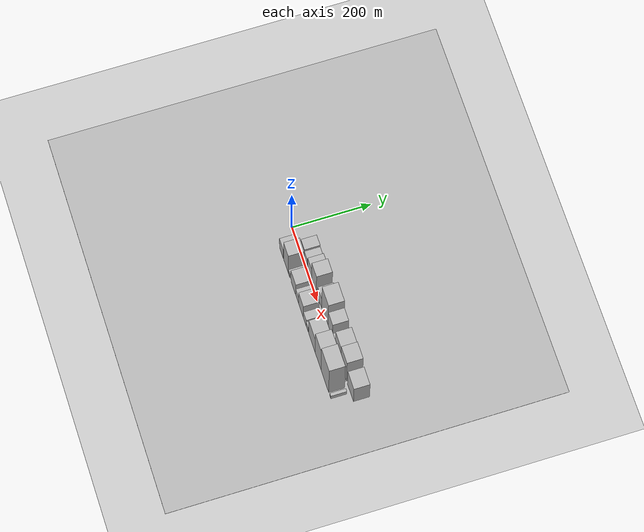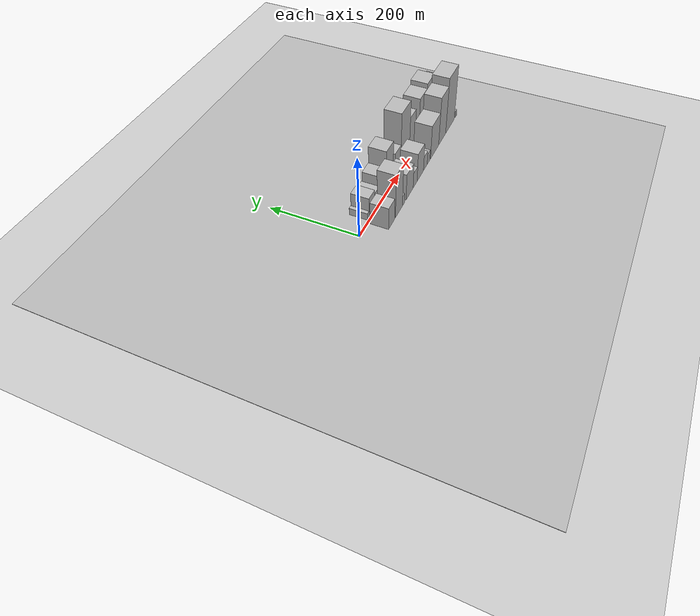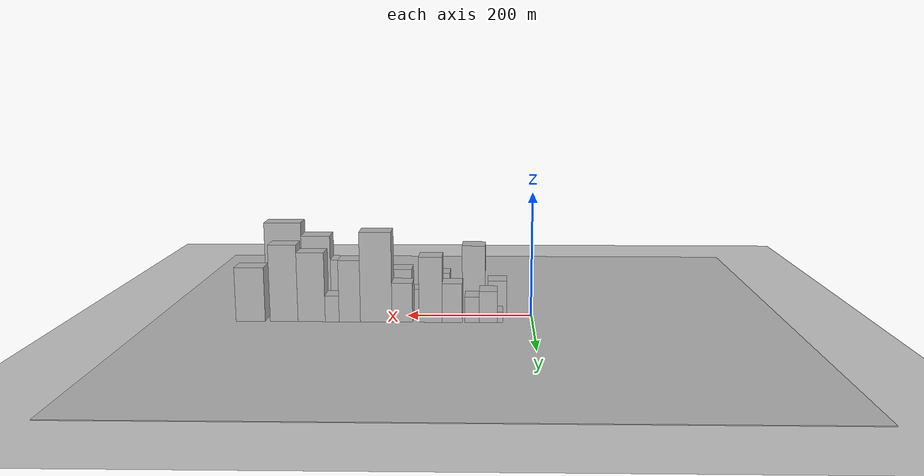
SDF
<?xml version="1.0" encoding="utf-8"?>

<sdf version="1.6">

   <world name="default">

      <gui fullscreen="0">

         <camera name="user_camera">

            <pose>-15 0 4.57585 0 0 0</pose>

            <view_controller>orbit</view_controller>

         </camera>

      </gui>

      <scene>

         <sky>

           <clouds>

             <speed>12</speed>

           </clouds>

         </sky>

         <ambient>0.4 0.4 0.4 1</ambient>

         <background>0.7 0.7 0.7 1</background>

         <shadows>1</shadows>

      </scene>

      <gravity>0 0 -9.8066</gravity>

      <magnetic_field>6e-06 2.3e-05 -4.2e-05</magnetic_field>

      <physics default="0" name="default_physics" type="ode">

         <ode>

            <solver>

               <type>quick</type>

               <iters>10</iters>

               <sor>1.0</sor>

               <use_dynamic_moi_rescaling>0</use_dynamic_moi_rescaling>

            </solver>

            <constraints>

               <cfm>0</cfm>

               <erp>0.2</erp>

               <contact_max_correcting_vel>100</contact_max_correcting_vel>

               <contact_surface_layer>0.001</contact_surface_layer>

            </constraints>

         </ode>

         <max_step_size>0.004</max_step_size>

         <real_time_factor>1</real_time_factor>

         <real_time_update_rate>250</real_time_update_rate>

      </physics>

      <light name="sun" type="directional">

         <cast_shadows>1</cast_shadows>

         <pose>0 0 10 0 0 0</pose>

         <diffuse>0.8 0.8 0.8 1</diffuse>

         <specular>0.2 0.2 0.2 1</specular>

         <attenuation>

            <range>1000</range>

            <constant>0.9</constant>

            <linear>0.01</linear>

            <quadratic>0.001</quadratic>

         </attenuation>

         <direction>-0.5 0.1 -0.9</direction>

      </light>

      <include>

         <name>ground_plane_1</name>

         <uri>model://HANNAS_ground_plane</uri>

         <pose>0 0 0  0 0 0</pose>

      </include>

      <include>

         <name>ground_plane_2</name>

         <uri>model://HANNAS_ground_plane</uri>

         <pose>100 0 0  0 0 0</pose>

      </include>

      <model name="building_1">

         <static>1</static>

         <pose frame="">51.3015 24.5000 0 0.000000 0.000000 1.570796</pose>

         <link name="link">

            <pose frame="">0 0 9.00 0 0 0</pose>

            <collision name="collision">

               <geometry>

                  <box>

                     <size>40.0000 8.6030 18.0000</size>

                  </box>

               </geometry>

               <max_contacts>10</max_contacts>

               <surface>

                  <contact>

                     <ode/>

                  </contact>

                  <bounce/>

                  <friction>

                     <torsional>

                        <ode/>

                     </torsional>

                     <ode/>

                  </friction>

               </surface>

            </collision>

            <visual name="visual">

               <cast_shadows>0</cast_shadows>

               <geometry>

                  <box>

                     <size>40.0000 8.6030 18.0000</size>

                  </box>

               </geometry>

               <material>

                  <script>

                     <uri>model://HANNAS_wall/materials/scripts</uri>

                     <uri>model://HANNAS_wall/materials/textures</uri>

                     <name>vrc/HANNAS_wall</name>

                  </script>

               </material>

            </visual>

            <self_collide>0</self_collide>

            <enable_wind>0</enable_wind>

            <kinematic>0</kinematic>

         </link>

      </model>

      <model name="building_2">

         <static>1</static>

         <pose frame="">69.7901 24.5000 0 0.000000 0.000000 1.570796</pose>

         <link name="link">

            <pose frame="">0 0 25.50 0 0 0</pose>

            <collision name="collision">

               <geometry>

                  <box>

                     <size>40.0000 28.3742 51.0000</size>

                  </box>

               </geometry>

               <max_contacts>10</max_contacts>

               <surface>

                  <contact>

                     <ode/>

                  </contact>

                  <bounce/>

                  <friction>

                     <torsional>

                        <ode/>

                     </torsional>

                     <ode/>

                  </friction>

               </surface>

            </collision>

            <visual name="visual">

               <cast_shadows>0</cast_shadows>

               <geometry>

                  <box>

                     <size>40.0000 28.3742 51.0000</size>

                  </box>

               </geometry>

               <material>

                  <script>

                     <uri>model://HANNAS_wall/materials/scripts</uri>

                     <uri>model://HANNAS_wall/materials/textures</uri>

                     <name>vrc/HANNAS_wall</name>

                  </script>

               </material>

            </visual>

            <self_collide>0</self_collide>

            <enable_wind>0</enable_wind>

            <kinematic>0</kinematic>

         </link>

      </model>

      <model name="building_3">

         <static>1</static>

         <pose frame="">95.3571 24.5000 0 0.000000 0.000000 1.570796</pose>

         <link name="link">

            <pose frame="">0 0 21.00 0 0 0</pose>

            <collision name="collision">

               <geometry>

                  <box>

                     <size>40.0000 22.7597 42.0000</size>

                  </box>

               </geometry>

               <max_contacts>10</max_contacts>

               <surface>

                  <contact>

                     <ode/>

                  </contact>

                  <bounce/>

                  <friction>

                     <torsional>

                        <ode/>

                     </torsional>

                     <ode/>

                  </friction>

               </surface>

            </collision>

            <visual name="visual">

               <cast_shadows>0</cast_shadows>

               <geometry>

                  <box>

                     <size>40.0000 22.7597 42.0000</size>

                  </box>

               </geometry>

               <material>

                  <script>

                     <uri>model://HANNAS_wall/materials/scripts</uri>

                     <uri>model://HANNAS_wall/materials/textures</uri>

                     <name>vrc/HANNAS_wall</name>

                  </script>

               </material>

            </visual>

            <self_collide>0</self_collide>

            <enable_wind>0</enable_wind>

            <kinematic>0</kinematic>

         </link>

      </model>

      <model name="building_4">

         <static>1</static>

         <pose frame="">126.5291 24.5000 0 0.000000 0.000000 1.570796</pose>

         <link name="link">

            <pose frame="">0 0 31.50 0 0 0</pose>

            <collision name="collision">

               <geometry>

                  <box>

                     <size>40.0000 31.5842 63.0000</size>

                  </box>

               </geometry>

               <max_contacts>10</max_contacts>

               <surface>

                  <contact>

                     <ode/>

                  </contact>

                  <bounce/>

                  <friction>

                     <torsional>

                        <ode/>

                     </torsional>

                     <ode/>

                  </friction>

               </surface>

            </collision>

            <visual name="visual">

               <cast_shadows>0</cast_shadows>

               <geometry>

                  <box>

                     <size>40.0000 31.5842 63.0000</size>

                  </box>

               </geometry>

               <material>

                  <script>

                     <uri>model://HANNAS_wall/materials/scripts</uri>

                     <uri>model://HANNAS_wall/materials/textures</uri>

                     <name>vrc/HANNAS_wall</name>

                  </script>

               </material>

            </visual>

            <self_collide>0</self_collide>

            <enable_wind>0</enable_wind>

            <kinematic>0</kinematic>

         </link>

      </model>

      <model name="building_5">

         <static>1</static>

         <pose frame="">160.6583 24.5000 0 0.000000 0.000000 1.570796</pose>

         <link name="link">

            <pose frame="">0 0 52.50 0 0 0</pose>

            <collision name="collision">

               <geometry>

                  <box>

                     <size>40.0000 36.6742 105.0000</size>

                  </box>

               </geometry>

               <max_contacts>10</max_contacts>

               <surface>

                  <contact>

                     <ode/>

                  </contact>

                  <bounce/>

                  <friction>

                     <torsional>

                        <ode/>

                     </torsional>

                     <ode/>

                  </friction>

               </surface>

            </collision>

            <visual name="visual">

               <cast_shadows>0</cast_shadows>

               <geometry>

                  <box>

                     <size>40.0000 36.6742 105.0000</size>

                  </box>

               </geometry>

               <material>

                  <script>

                     <uri>model://HANNAS_wall/materials/scripts</uri>

                     <uri>model://HANNAS_wall/materials/textures</uri>

                     <name>vrc/HANNAS_wall</name>

                  </script>

               </material>

            </visual>

            <self_collide>0</self_collide>

            <enable_wind>0</enable_wind>

            <kinematic>0</kinematic>

         </link>

      </model>

      <model name="building_6">

         <static>1</static>

         <pose frame="">205.2585 24.5000 0 0.000000 0.000000 1.570796</pose>

         <link name="link">

            <pose frame="">0 0 31.50 0 0 0</pose>

            <collision name="collision">

               <geometry>

                  <box>

                     <size>40.0000 32.5263 63.0000</size>

                  </box>

               </geometry>

               <max_contacts>10</max_contacts>

               <surface>

                  <contact>

                     <ode/>

                  </contact>

                  <bounce/>

                  <friction>

                     <torsional>

                        <ode/>

                     </torsional>

                     <ode/>

                  </friction>

               </surface>

            </collision>

            <visual name="visual">

               <cast_shadows>0</cast_shadows>

               <geometry>

                  <box>

                     <size>40.0000 32.5263 63.0000</size>

                  </box>

               </geometry>

               <material>

                  <script>

                     <uri>model://HANNAS_wall/materials/scripts</uri>

                     <uri>model://HANNAS_wall/materials/textures</uri>

                     <name>vrc/HANNAS_wall</name>

                  </script>

               </material>

            </visual>

            <self_collide>0</self_collide>

            <enable_wind>0</enable_wind>

            <kinematic>0</kinematic>

         </link>

      </model>

      <model name="building_7">

         <static>1</static>

         <pose frame="">246.4356 24.5000 0 0.000000 0.000000 1.570796</pose>

         <link name="link">

            <pose frame="">0 0 72.00 0 0 0</pose>

            <collision name="collision">

               <geometry>

                  <box>

                     <size>40.0000 49.8278 144.0000</size>

                  </box>

               </geometry>

               <max_contacts>10</max_contacts>

               <surface>

                  <contact>

                     <ode/>

                  </contact>

                  <bounce/>

                  <friction>

                     <torsional>

                        <ode/>

                     </torsional>

                     <ode/>

                  </friction>

               </surface>

            </collision>

            <visual name="visual">

               <cast_shadows>0</cast_shadows>

               <geometry>

                  <box>

                     <size>40.0000 49.8278 144.0000</size>

                  </box>

               </geometry>

               <material>

                  <script>

                     <uri>model://HANNAS_wall/materials/scripts</uri>

                     <uri>model://HANNAS_wall/materials/textures</uri>

                     <name>vrc/HANNAS_wall</name>

                  </script>

               </material>

            </visual>

            <self_collide>0</self_collide>

            <enable_wind>0</enable_wind>

            <kinematic>0</kinematic>

         </link>

      </model>

      <model name="building_8">

         <static>1</static>

         <pose frame="">288.2155 24.5000 0 0.000000 0.000000 1.570796</pose>

         <link name="link">

            <pose frame="">0 0 49.50 0 0 0</pose>

            <collision name="collision">

               <geometry>

                  <box>

                     <size>40.0000 33.7321 99.0000</size>

                  </box>

               </geometry>

               <max_contacts>10</max_contacts>

               <surface>

                  <contact>

                     <ode/>

                  </contact>

                  <bounce/>

                  <friction>

                     <torsional>

                        <ode/>

                     </torsional>

                     <ode/>

                  </friction>

               </surface>

            </collision>

            <visual name="visual">

               <cast_shadows>0</cast_shadows>

               <geometry>

                  <box>

                     <size>40.0000 33.7321 99.0000</size>

                  </box>

               </geometry>

               <material>

                  <script>

                     <uri>model://HANNAS_wall/materials/scripts</uri>

                     <uri>model://HANNAS_wall/materials/textures</uri>

                     <name>vrc/HANNAS_wall</name>

                  </script>

               </material>

            </visual>

            <self_collide>0</self_collide>

            <enable_wind>0</enable_wind>

            <kinematic>0</kinematic>

         </link>

      </model>

      <model name="building_9">

         <static>1</static>

         <pose frame="">316.1081 24.5000 0 0.000000 0.000000 1.570796</pose>

         <link name="link">

            <pose frame="">0 0 21.00 0 0 0</pose>

            <collision name="collision">

               <geometry>

                  <box>

                     <size>40.0000 22.0531 42.0000</size>

                  </box>

               </geometry>

               <max_contacts>10</max_contacts>

               <surface>

                  <contact>

                     <ode/>

                  </contact>

                  <bounce/>

                  <friction>

                     <torsional>

                        <ode/>

                     </torsional>

                     <ode/>

                  </friction>

               </surface>

            </collision>

            <visual name="visual">

               <cast_shadows>0</cast_shadows>

               <geometry>

                  <box>

                     <size>40.0000 22.0531 42.0000</size>

                  </box>

               </geometry>

               <material>

                  <script>

                     <uri>model://HANNAS_wall/materials/scripts</uri>

                     <uri>model://HANNAS_wall/materials/textures</uri>

                     <name>vrc/HANNAS_wall</name>

                  </script>

               </material>

            </visual>

            <self_collide>0</self_collide>

            <enable_wind>0</enable_wind>

            <kinematic>0</kinematic>

         </link>

      </model>

      <model name="building_10">

         <static>1</static>

         <pose frame="">348.7039 24.5000 0 0.000000 0.000000 1.570796</pose>

         <link name="link">

            <pose frame="">0 0 55.50 0 0 0</pose>

            <collision name="collision">

               <geometry>

                  <box>

                     <size>40.0000 43.1385 111.0000</size>

                  </box>

               </geometry>

               <max_contacts>10</max_contacts>

               <surface>

                  <contact>

                     <ode/>

                  </contact>

                  <bounce/>

                  <friction>

                     <torsional>

                        <ode/>

                     </torsional>

                     <ode/>

                  </friction>

               </surface>

            </collision>

            <visual name="visual">

               <cast_shadows>0</cast_shadows>

               <geometry>

                  <box>

                     <size>40.0000 43.1385 111.0000</size>

                  </box>

               </geometry>

               <material>

                  <script>

                     <uri>model://HANNAS_wall/materials/scripts</uri>

                     <uri>model://HANNAS_wall/materials/textures</uri>

                     <name>vrc/HANNAS_wall</name>

                  </script>

               </material>

            </visual>

            <self_collide>0</self_collide>

            <enable_wind>0</enable_wind>

            <kinematic>0</kinematic>

         </link>

      </model>

      <model name="building_11">

         <static>1</static>

         <pose frame="">392.2593 24.5000 0 0.000000 0.000000 1.570796</pose>

         <link name="link">

            <pose frame="">0 0 61.50 0 0 0</pose>

            <collision name="collision">

               <geometry>

                  <box>

                     <size>40.0000 43.9724 123.0000</size>

                  </box>

               </geometry>

               <max_contacts>10</max_contacts>

               <surface>

                  <contact>

                     <ode/>

                  </contact>

                  <bounce/>

                  <friction>

                     <torsional>

                        <ode/>

                     </torsional>

                     <ode/>

                  </friction>

               </surface>

            </collision>

            <visual name="visual">

               <cast_shadows>0</cast_shadows>

               <geometry>

                  <box>

                     <size>40.0000 43.9724 123.0000</size>

                  </box>

               </geometry>

               <material>

                  <script>

                     <uri>model://HANNAS_wall/materials/scripts</uri>

                     <uri>model://HANNAS_wall/materials/textures</uri>

                     <name>vrc/HANNAS_wall</name>

                  </script>

               </material>

            </visual>

            <self_collide>0</self_collide>

            <enable_wind>0</enable_wind>

            <kinematic>0</kinematic>

         </link>

      </model>

      <model name="building_12">

         <static>1</static>

         <pose frame="">445.4238 24.5000 0 0.000000 0.000000 1.570796</pose>

         <link name="link">

            <pose frame="">0 0 43.50 0 0 0</pose>

            <collision name="collision">

               <geometry>

                  <box>

                     <size>40.0000 46.3566 87.0000</size>

                  </box>

               </geometry>

               <max_contacts>10</max_contacts>

               <surface>

                  <contact>

                     <ode/>

                  </contact>

                  <bounce/>

                  <friction>

                     <torsional>

                        <ode/>

                     </torsional>

                     <ode/>

                  </friction>

               </surface>

            </collision>

            <visual name="visual">

               <cast_shadows>0</cast_shadows>

               <geometry>

                  <box>

                     <size>40.0000 46.3566 87.0000</size>

                  </box>

               </geometry>

               <material>

                  <script>

                     <uri>model://HANNAS_wall/materials/scripts</uri>

                     <uri>model://HANNAS_wall/materials/textures</uri>

                     <name>vrc/HANNAS_wall</name>

                  </script>

               </material>

            </visual>

            <self_collide>0</self_collide>

            <enable_wind>0</enable_wind>

            <kinematic>0</kinematic>

         </link>

      </model>

      <model name="building_13">

         <static>1</static>

         <pose frame="">55.4847 -24.5000 0 0.000000 0.000000 1.570796</pose>

         <link name="link">

            <pose frame="">0 0 28.50 0 0 0</pose>

            <collision name="collision">

               <geometry>

                  <box>

                     <size>40.0000 30.9694 57.0000</size>

                  </box>

               </geometry>

               <max_contacts>10</max_contacts>

               <surface>

                  <contact>

                     <ode/>

                  </contact>

                  <bounce/>

                  <friction>

                     <torsional>

                        <ode/>

                     </torsional>

                     <ode/>

                  </friction>

               </surface>

            </collision>

            <visual name="visual">

               <cast_shadows>0</cast_shadows>

               <geometry>

                  <box>

                     <size>40.0000 30.9694 57.0000</size>

                  </box>

               </geometry>

               <material>

                  <script>

                     <uri>model://HANNAS_wall/materials/scripts</uri>

                     <uri>model://HANNAS_wall/materials/textures</uri>

                     <name>vrc/HANNAS_wall</name>

                  </script>

               </material>

            </visual>

            <self_collide>0</self_collide>

            <enable_wind>0</enable_wind>

            <kinematic>0</kinematic>

         </link>

      </model>

      <model name="building_14">

         <static>1</static>

         <pose frame="">93.5001 -24.5000 0 0.000000 0.000000 1.570796</pose>

         <link name="link">

            <pose frame="">0 0 57.00 0 0 0</pose>

            <collision name="collision">

               <geometry>

                  <box>

                     <size>40.0000 37.0613 114.0000</size>

                  </box>

               </geometry>

               <max_contacts>10</max_contacts>

               <surface>

                  <contact>

                     <ode/>

                  </contact>

                  <bounce/>

                  <friction>

                     <torsional>

                        <ode/>

                     </torsional>

                     <ode/>

                  </friction>

               </surface>

            </collision>

            <visual name="visual">

               <cast_shadows>0</cast_shadows>

               <geometry>

                  <box>

                     <size>40.0000 37.0613 114.0000</size>

                  </box>

               </geometry>

               <material>

                  <script>

                     <uri>model://HANNAS_wall/materials/scripts</uri>

                     <uri>model://HANNAS_wall/materials/textures</uri>

                     <name>vrc/HANNAS_wall</name>

                  </script>

               </material>

            </visual>

            <self_collide>0</self_collide>

            <enable_wind>0</enable_wind>

            <kinematic>0</kinematic>

         </link>

      </model>

      <model name="building_15">

         <static>1</static>

         <pose frame="">117.4881 -24.5000 0 0.000000 0.000000 1.570796</pose>

         <link name="link">

            <pose frame="">0 0 13.50 0 0 0</pose>

            <collision name="collision">

               <geometry>

                  <box>

                     <size>40.0000 10.9147 27.0000</size>

                  </box>

               </geometry>

               <max_contacts>10</max_contacts>

               <surface>

                  <contact>

                     <ode/>

                  </contact>

                  <bounce/>

                  <friction>

                     <torsional>

                        <ode/>

                     </torsional>

                     <ode/>

                  </friction>

               </surface>

            </collision>

            <visual name="visual">

               <cast_shadows>0</cast_shadows>

               <geometry>

                  <box>

                     <size>40.0000 10.9147 27.0000</size>

                  </box>

               </geometry>

               <material>

                  <script>

                     <uri>model://HANNAS_wall/materials/scripts</uri>

                     <uri>model://HANNAS_wall/materials/textures</uri>

                     <name>vrc/HANNAS_wall</name>

                  </script>

               </material>

            </visual>

            <self_collide>0</self_collide>

            <enable_wind>0</enable_wind>

            <kinematic>0</kinematic>

         </link>

      </model>

      <model name="building_16">

         <static>1</static>

         <pose frame="">151.2988 -24.5000 0 0.000000 0.000000 1.570796</pose>

         <link name="link">

            <pose frame="">0 0 34.50 0 0 0</pose>

            <collision name="collision">

               <geometry>

                  <box>

                     <size>40.0000 38.7068 69.0000</size>

                  </box>

               </geometry>

               <max_contacts>10</max_contacts>

               <surface>

                  <contact>

                     <ode/>

                  </contact>

                  <bounce/>

                  <friction>

                     <torsional>

                        <ode/>

                     </torsional>

                     <ode/>

                  </friction>

               </surface>

            </collision>

            <visual name="visual">

               <cast_shadows>0</cast_shadows>

               <geometry>

                  <box>

                     <size>40.0000 38.7068 69.0000</size>

                  </box>

               </geometry>

               <material>

                  <script>

                     <uri>model://HANNAS_wall/materials/scripts</uri>

                     <uri>model://HANNAS_wall/materials/textures</uri>

                     <name>vrc/HANNAS_wall</name>

                  </script>

               </material>

            </visual>

            <self_collide>0</self_collide>

            <enable_wind>0</enable_wind>

            <kinematic>0</kinematic>

         </link>

      </model>

      <model name="building_17">

         <static>1</static>

         <pose frame="">181.9933 -24.5000 0 0.000000 0.000000 1.570796</pose>

         <link name="link">

            <pose frame="">0 0 21.00 0 0 0</pose>

            <collision name="collision">

               <geometry>

                  <box>

                     <size>40.0000 22.6822 42.0000</size>

                  </box>

               </geometry>

               <max_contacts>10</max_contacts>

               <surface>

                  <contact>

                     <ode/>

                  </contact>

                  <bounce/>

                  <friction>

                     <torsional>

                        <ode/>

                     </torsional>

                     <ode/>

                  </friction>

               </surface>

            </collision>

            <visual name="visual">

               <cast_shadows>0</cast_shadows>

               <geometry>

                  <box>

                     <size>40.0000 22.6822 42.0000</size>

                  </box>

               </geometry>

               <material>

                  <script>

                     <uri>model://HANNAS_wall/materials/scripts</uri>

                     <uri>model://HANNAS_wall/materials/textures</uri>

                     <name>vrc/HANNAS_wall</name>

                  </script>

               </material>

            </visual>

            <self_collide>0</self_collide>

            <enable_wind>0</enable_wind>

            <kinematic>0</kinematic>

         </link>

      </model>

      <model name="building_18">

         <static>1</static>

         <pose frame="">212.1033 -24.5000 0 0.000000 0.000000 1.570796</pose>

         <link name="link">

            <pose frame="">0 0 37.50 0 0 0</pose>

            <collision name="collision">

               <geometry>

                  <box>

                     <size>40.0000 37.5378 75.0000</size>

                  </box>

               </geometry>

               <max_contacts>10</max_contacts>

               <surface>

                  <contact>

                     <ode/>

                  </contact>

                  <bounce/>

                  <friction>

                     <torsional>

                        <ode/>

                     </torsional>

                     <ode/>

                  </friction>

               </surface>

            </collision>

            <visual name="visual">

               <cast_shadows>0</cast_shadows>

               <geometry>

                  <box>

                     <size>40.0000 37.5378 75.0000</size>

                  </box>

               </geometry>

               <material>

                  <script>

                     <uri>model://HANNAS_wall/materials/scripts</uri>

                     <uri>model://HANNAS_wall/materials/textures</uri>

                     <name>vrc/HANNAS_wall</name>

                  </script>

               </material>

            </visual>

            <self_collide>0</self_collide>

            <enable_wind>0</enable_wind>

            <kinematic>0</kinematic>

         </link>

      </model>

      <model name="building_19">

         <static>1</static>

         <pose frame="">242.0917 -24.5000 0 0.000000 0.000000 1.570796</pose>

         <link name="link">

            <pose frame="">0 0 19.50 0 0 0</pose>

            <collision name="collision">

               <geometry>

                  <box>

                     <size>40.0000 22.4389 39.0000</size>

                  </box>

               </geometry>

               <max_contacts>10</max_contacts>

               <surface>

                  <contact>

                     <ode/>

                  </contact>

                  <bounce/>

                  <friction>

                     <torsional>

                        <ode/>

                     </torsional>

                     <ode/>

                  </friction>

               </surface>

            </collision>

            <visual name="visual">

               <cast_shadows>0</cast_shadows>

               <geometry>

                  <box>

                     <size>40.0000 22.4389 39.0000</size>

                  </box>

               </geometry>

               <material>

                  <script>

                     <uri>model://HANNAS_wall/materials/scripts</uri>

                     <uri>model://HANNAS_wall/materials/textures</uri>

                     <name>vrc/HANNAS_wall</name>

                  </script>

               </material>

            </visual>

            <self_collide>0</self_collide>

            <enable_wind>0</enable_wind>

            <kinematic>0</kinematic>

         </link>

      </model>

      <model name="building_20">

         <static>1</static>

         <pose frame="">261.3202 -24.5000 0 0.000000 0.000000 1.570796</pose>

         <link name="link">

            <pose frame="">0 0 15.00 0 0 0</pose>

            <collision name="collision">

               <geometry>

                  <box>

                     <size>40.0000 16.0181 30.0000</size>

                  </box>

               </geometry>

               <max_contacts>10</max_contacts>

               <surface>

                  <contact>

                     <ode/>

                  </contact>

                  <bounce/>

                  <friction>

                     <torsional>

                        <ode/>

                     </torsional>

                     <ode/>

                  </friction>

               </surface>

            </collision>

            <visual name="visual">

               <cast_shadows>0</cast_shadows>

               <geometry>

                  <box>

                     <size>40.0000 16.0181 30.0000</size>

                  </box>

               </geometry>

               <material>

                  <script>

                     <uri>model://HANNAS_wall/materials/scripts</uri>

                     <uri>model://HANNAS_wall/materials/textures</uri>

                     <name>vrc/HANNAS_wall</name>

                  </script>

               </material>

            </visual>

            <self_collide>0</self_collide>

            <enable_wind>0</enable_wind>

            <kinematic>0</kinematic>

         </link>

      </model>

      <model name="building_21">

         <static>1</static>

         <pose frame="">298.8502 -24.5000 0 0.000000 0.000000 1.570796</pose>

         <link name="link">

            <pose frame="">0 0 45.00 0 0 0</pose>

            <collision name="collision">

               <geometry>

                  <box>

                     <size>40.0000 51.0420 90.0000</size>

                  </box>

               </geometry>

               <max_contacts>10</max_contacts>

               <surface>

                  <contact>

                     <ode/>

                  </contact>

                  <bounce/>

                  <friction>

                     <torsional>

                        <ode/>

                     </torsional>

                     <ode/>

                  </friction>

               </surface>

            </collision>

            <visual name="visual">

               <cast_shadows>0</cast_shadows>

               <geometry>

                  <box>

                     <size>40.0000 51.0420 90.0000</size>

                  </box>

               </geometry>

               <material>

                  <script>

                     <uri>model://HANNAS_wall/materials/scripts</uri>

                     <uri>model://HANNAS_wall/materials/textures</uri>

                     <name>vrc/HANNAS_wall</name>

                  </script>

               </material>

            </visual>

            <self_collide>0</self_collide>

            <enable_wind>0</enable_wind>

            <kinematic>0</kinematic>

         </link>

      </model>

      <model name="building_22">

         <static>1</static>

         <pose frame="">347.4805 -24.5000 0 0.000000 0.000000 1.570796</pose>

         <link name="link">

            <pose frame="">0 0 64.50 0 0 0</pose>

            <collision name="collision">

               <geometry>

                  <box>

                     <size>40.0000 46.2185 129.0000</size>

                  </box>

               </geometry>

               <max_contacts>10</max_contacts>

               <surface>

                  <contact>

                     <ode/>

                  </contact>

                  <bounce/>

                  <friction>

                     <torsional>

                        <ode/>

                     </torsional>

                     <ode/>

                  </friction>

               </surface>

            </collision>

            <visual name="visual">

               <cast_shadows>0</cast_shadows>

               <geometry>

                  <box>

                     <size>40.0000 46.2185 129.0000</size>

                  </box>

               </geometry>

               <material>

                  <script>

                     <uri>model://HANNAS_wall/materials/scripts</uri>

                     <uri>model://HANNAS_wall/materials/textures</uri>

                     <name>vrc/HANNAS_wall</name>

                  </script>

               </material>

            </visual>

            <self_collide>0</self_collide>

            <enable_wind>0</enable_wind>

            <kinematic>0</kinematic>

         </link>

      </model>

      <model name="building_23">

         <static>1</static>

         <pose frame="">399.9981 -24.5000 0 0.000000 0.000000 1.570796</pose>

         <link name="link">

            <pose frame="">0 0 75.00 0 0 0</pose>

            <collision name="collision">

               <geometry>

                  <box>

                     <size>40.0000 58.8167 150.0000</size>

                  </box>

               </geometry>

               <max_contacts>10</max_contacts>

               <surface>

                  <contact>

                     <ode/>

                  </contact>

                  <bounce/>

                  <friction>

                     <torsional>

                        <ode/>

                     </torsional>

                     <ode/>

                  </friction>

               </surface>

            </collision>

            <visual name="visual">

               <cast_shadows>0</cast_shadows>

               <geometry>

                  <box>

                     <size>40.0000 58.8167 150.0000</size>

                  </box>

               </geometry>

               <material>

                  <script>

                     <uri>model://HANNAS_wall/materials/scripts</uri>

                     <uri>model://HANNAS_wall/materials/textures</uri>

                     <name>vrc/HANNAS_wall</name>

                  </script>

               </material>

            </visual>

            <self_collide>0</self_collide>

            <enable_wind>0</enable_wind>

            <kinematic>0</kinematic>

         </link>

      </model>

      <model name="building_24">

         <static>1</static>

         <pose frame="">441.6138 -24.5000 0 0.000000 0.000000 1.570796</pose>

         <link name="link">

            <pose frame="">0 0 9.00 0 0 0</pose>

            <collision name="collision">

               <geometry>

                  <box>

                     <size>40.0000 8.4147 18.0000</size>

                  </box>

               </geometry>

               <max_contacts>10</max_contacts>

               <surface>

                  <contact>

                     <ode/>

                  </contact>

                  <bounce/>

                  <friction>

                     <torsional>

                        <ode/>

                     </torsional>

                     <ode/>

                  </friction>

               </surface>

            </collision>

            <visual name="visual">

               <cast_shadows>0</cast_shadows>

               <geometry>

                  <box>

                     <size>40.0000 8.4147 18.0000</size>

                  </box>

               </geometry>

               <material>

                  <script>

                     <uri>model://HANNAS_wall/materials/scripts</uri>

                     <uri>model://HANNAS_wall/materials/textures</uri>

                     <name>vrc/HANNAS_wall</name>

                  </script>

               </material>

            </visual>

            <self_collide>0</self_collide>

            <enable_wind>0</enable_wind>

            <kinematic>0</kinematic>

         </link>

      </model>

   </world>

</sdf>

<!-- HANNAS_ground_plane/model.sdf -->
<sdf version="1.4">
<model name="HANNAS_ground_plane">
  <static>true</static>
    <link name="link">
      <collision name="collision">
        <geometry>
          <plane>
            <normal>0 0 1</normal>
            <size>1000 1000</size>
          </plane>
        </geometry>
        <surface>
          <friction>
            <ode>
              <mu>100</mu>
              <mu2>50</mu2>
            </ode>
          </friction>
        </surface>
      </collision>
      <visual name="visual">
        <cast_shadows>false</cast_shadows>
        <geometry>
          <plane>
            <normal>0 0 1</normal>
            <size>1000 1000</size>
          </plane>
        </geometry>
        <material>
          <script>
            <uri>model://HANNAS_ground_plane/materials/scripts/HANNAS_ground_plane.material</uri>
	    <uri>model://HANNAS_ground_plane/materials/textures</uri>
            <name>HANNASGroundPlane/Image</name>
          </script>
        </material>
      </visual>
    </link>
  </model>
</sdf>
